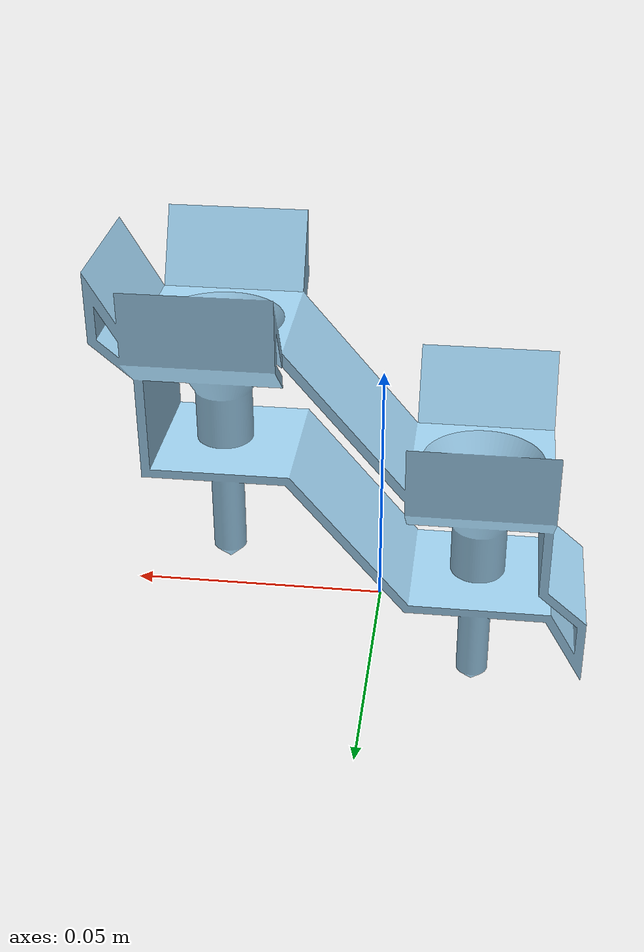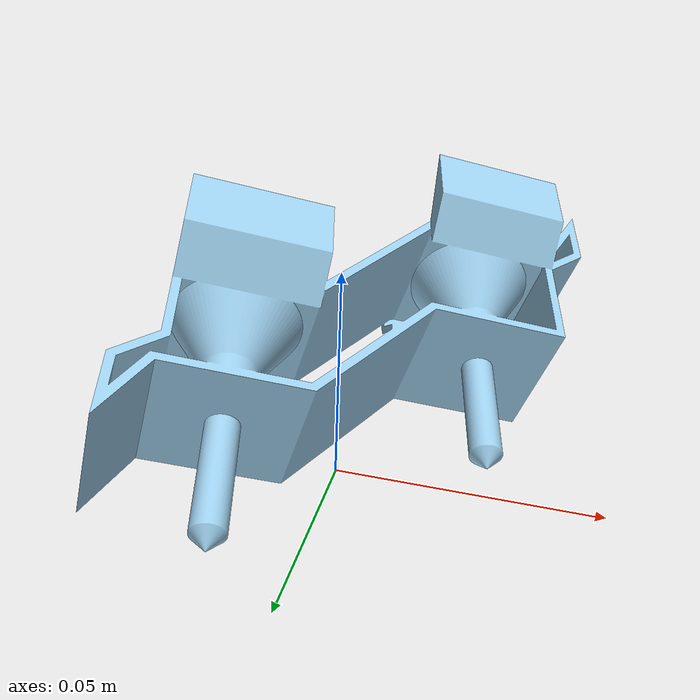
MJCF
<?xml version="1.0" ?>
<!-- Generated using onshape-to-robot -->
<!-- Onshape https://cad.onshape.com/documents/9aedd902d9f4dee95f6f5669/w/7949dab0ca2a5f2bbdbe781f/e/63a7035f74b8098695910a34 -->
<mujoco model="two_peg_block_complement">
  <compiler angle="radian" meshdir="assets" autolimits="true"/>
  <default>
    <default class="two_peg_block_complement">
      <joint frictionloss="0.1" armature="0.005"/>
      <position kp="50" dampratio="1"/>
      <default class="visual">
        <geom type="mesh" contype="0" conaffinity="0" group="2"/>
      </default>
      <default class="collision">
        <geom group="3"/>
      </default>
    </default>
  </default>
  <worldbody>
    <!-- Link part_1 -->
    <body name="part_1" pos="0 0 0" quat="1 0 0 0" childclass="two_peg_block_complement">
      <freejoint name="part_1_freejoint"/>
      <inertial pos="0 0 0" mass="1e-09" fullinertia="1e-09 1e-09 1e-09 0 0 0"/>
      <!-- Part part_1 -->
      <geom type="mesh" class="visual" pos="-0.00600658 0.00402643 0.00821907" quat="1 0 0 0" mesh="part_1" material="part_1_material"/>
      <geom type="mesh" class="collision" pos="-0.00600658 0.00402643 0.00821907" quat="1 0 0 0" mesh="part_1" material="part_1_material"/>
    </body>
  </worldbody>
  <asset>
    <mesh file="part_1.stl"/>
    <material name="part_1_material" rgba="0.615686 0.811765 0.929412 1"/>
  </asset>
  <actuator/>
  <equality/>
</mujoco>
